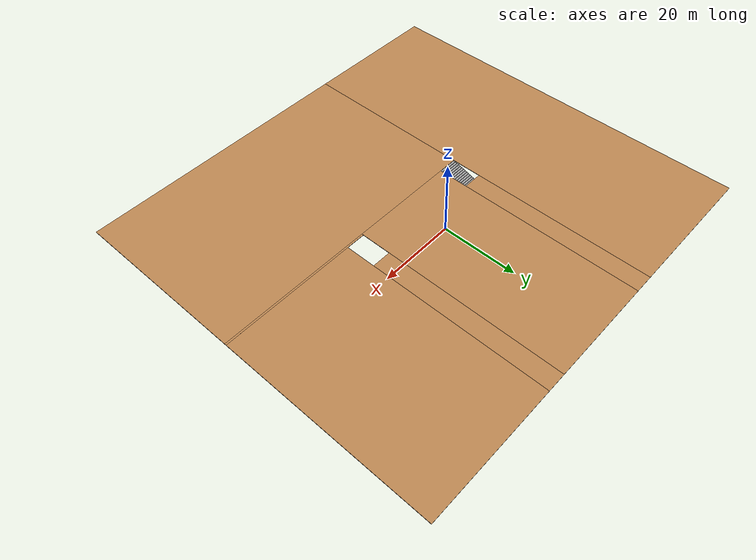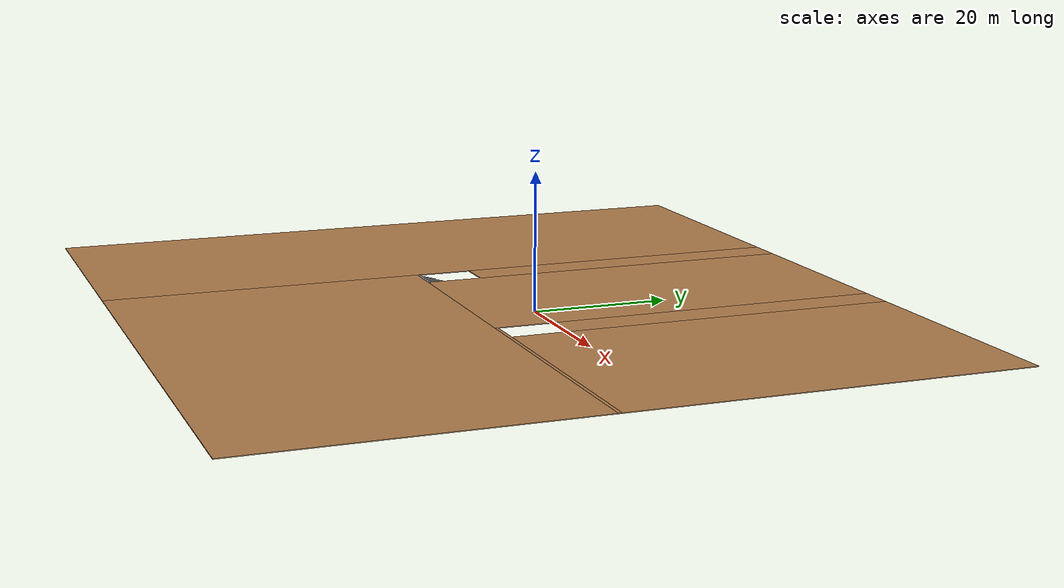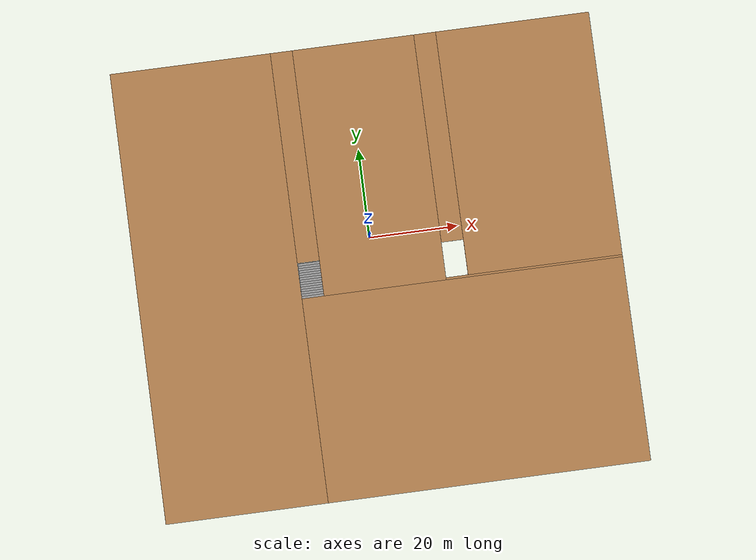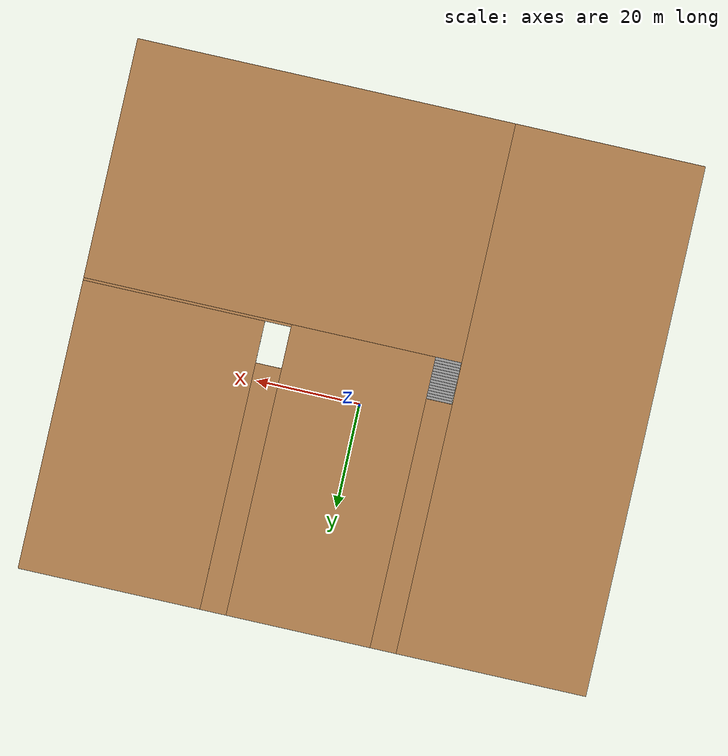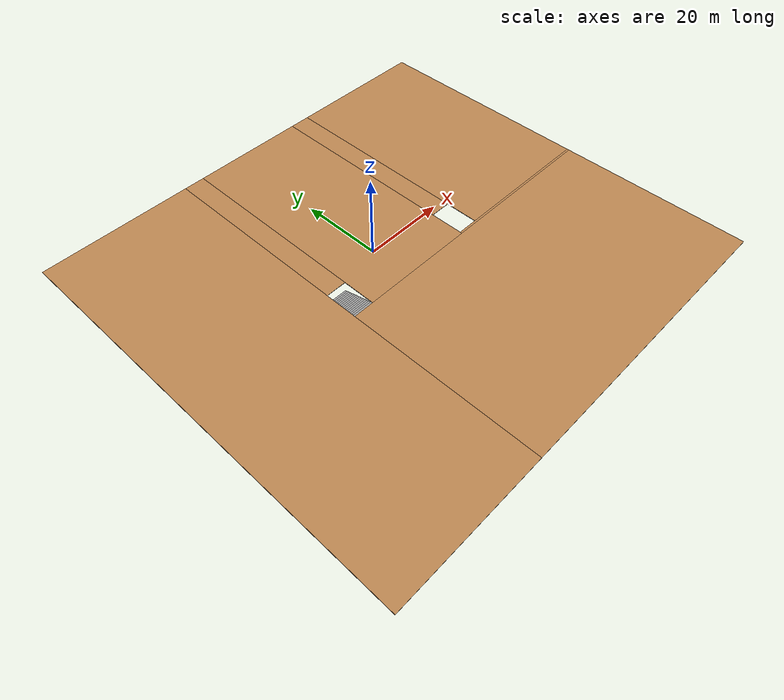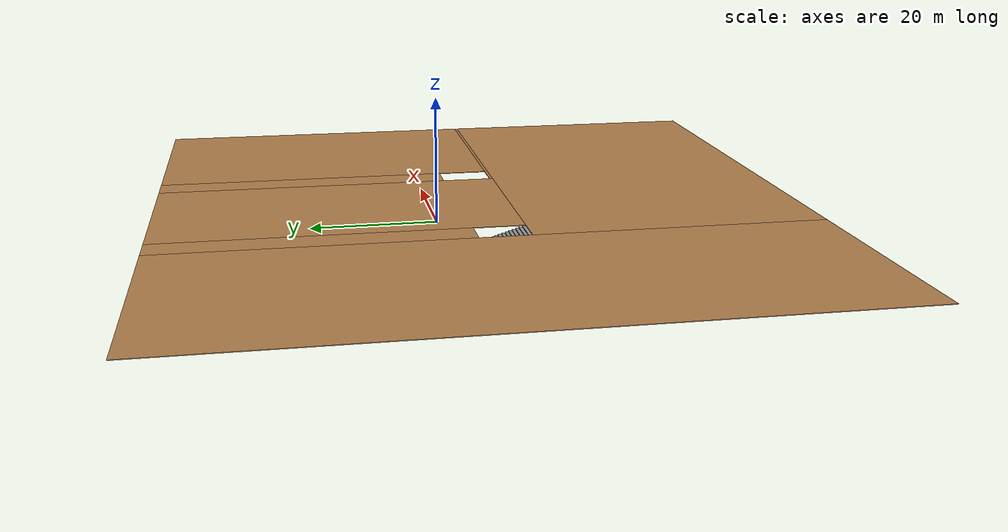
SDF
<sdf version="1.6">
 <model name="new_building">
  <pose>1.10912 -6.88825 0 0 -0 0</pose>
  <link name="Floor_0">
   <pose>0 1e-06 2.5 0 -0 0</pose>
   <visual name="Floor_0_Visual_0">
    <pose>-36.3115 0 0.05 0 -0 0</pose>
    <geometry><box><size>36.4817 101.781 0.1</size></box></geometry>
    <material>
     <script><uri>file://media/materials/scripts/gazebo.material</uri><name>Gazebo/Wood</name></script>
     <ambient>1 1 1 1</ambient>
    </material>
    <meta><layer>1</layer></meta>
   </visual>
   <collision name="Floor_0_Collision_0">
    <geometry><box><size>36.4817 101.781 0.1</size></box></geometry>
    <pose>-36.3115 0 0.05 0 -0 0</pose>
   </collision>
   <visual name="Floor_0_Visual_1">
    <pose>18.2409 -27.9329 0.05 0 -0 0</pose>
    <geometry><box><size>72.6231 45.9155 0.1</size></box></geometry>
    <material>
     <script><uri>file://media/materials/scripts/gazebo.material</uri><name>Gazebo/Wood</name></script>
     <ambient>1 1 1 1</ambient>
    </material>
    <meta><layer>1</layer></meta>
   </visual>
   <collision name="Floor_0_Collision_1">
    <geometry><box><size>72.6231 45.9155 0.1</size></box></geometry>
    <pose>18.2409 -27.9329 0.05 0 -0 0</pose>
   </collision>
   <visual name="Floor_0_Visual_2">
    <pose>0.764911 22.9577 0.05 0 -0 0</pose>
    <geometry><box><size>27.6712 55.8658 0.1</size></box></geometry>
    <material>
     <script><uri>file://media/materials/scripts/gazebo.material</uri><name>Gazebo/Wood</name></script>
     <ambient>1 1 1 1</ambient>
    </material>
    <meta><layer>1</layer></meta>
   </visual>
   <collision name="Floor_0_Collision_2">
    <geometry><box><size>27.6712 55.8658 0.1</size></box></geometry>
    <pose>0.764911 22.9577 0.05 0 -0 0</pose>
   </collision>
   <visual name="Floor_0_Visual_3">
    <pose>34.5765 -4.72762 0.05 0 -0 0</pose>
    <geometry><box><size>39.9519 0.495018 0.1</size></box></geometry>
    <material>
     <script><uri>file://media/materials/scripts/gazebo.material</uri><name>Gazebo/Wood</name></script>
     <ambient>1 1 1 1</ambient>
    </material>
    <meta><layer>1</layer></meta>
   </visual>
   <collision name="Floor_0_Collision_3">
    <geometry><box><size>39.9519 0.495018 0.1</size></box></geometry>
    <pose>34.5765 -4.72762 0.05 0 -0 0</pose>
   </collision>
   <visual name="Floor_0_Visual_4">
    <pose>37.0765 23.2053 0.05 0 -0 0</pose>
    <geometry><box><size>34.9519 55.3707 0.1</size></box></geometry>
    <material>
     <script><uri>file://media/materials/scripts/gazebo.material</uri><name>Gazebo/Wood</name></script>
     <ambient>1 1 1 1</ambient>
    </material>
    <meta><layer>1</layer></meta>
   </visual>
   <collision name="Floor_0_Collision_4">
    <geometry><box><size>34.9519 55.3707 0.1</size></box></geometry>
    <pose>37.0765 23.2053 0.05 0 -0 0</pose>
   </collision>
   <visual name="Floor_0_Visual_5">
    <pose>-15.5707 26.9577 0.05 0 -0 0</pose>
    <geometry><box><size>5 47.8658 0.1</size></box></geometry>
    <material>
     <script><uri>file://media/materials/scripts/gazebo.material</uri><name>Gazebo/Wood</name></script>
     <ambient>1 1 1 1</ambient>
    </material>
    <meta><layer>1</layer></meta>
   </visual>
   <collision name="Floor_0_Collision_5">
    <geometry><box><size>5 47.8658 0.1</size></box></geometry>
    <pose>-15.5707 26.9577 0.05 0 -0 0</pose>
   </collision>
   <visual name="Floor_0_Visual_6">
    <pose>17.1005 27.2053 0.05 0 -0 0</pose>
    <geometry><box><size>5 47.3707 0.1</size></box></geometry>
    <material>
     <script><uri>file://media/materials/scripts/gazebo.material</uri><name>Gazebo/Wood</name></script>
     <ambient>1 1 1 1</ambient>
    </material>
    <meta><layer>1</layer></meta>
   </visual>
   <collision name="Floor_0_Collision_6">
    <geometry><box><size>5 47.3707 0.1</size></box></geometry>
    <pose>17.1005 27.2053 0.05 0 -0 0</pose>
   </collision>
  </link>
  <link name="Stairs_1">
   <visual name="Stairs_1_Visual_0">
    <pose>-15.5707 2.7582 0.083333 0 -0 0</pose>
    <geometry><box><size>5 0.533333 0.166667</size></box></geometry>
    <material>
     <script><uri>file://media/materials/scripts/gazebo.material</uri><name>Gazebo/Grey</name></script>
     <ambient>1 1 1 1</ambient>
    </material>
    <meta><layer>0</layer></meta>
   </visual>
   <collision name="Stairs_1_Collision_0">
    <geometry><box><size>5 0.533333 0.166667</size></box></geometry>
    <pose>-15.5707 2.7582 0.083333 0 -0 0</pose>
   </collision>
   <visual name="Stairs_1_Visual_1">
    <pose>-15.5707 2.22487 0.25 0 -0 0</pose>
    <geometry><box><size>5 0.533333 0.166667</size></box></geometry>
    <material>
     <script><uri>file://media/materials/scripts/gazebo.material</uri><name>Gazebo/Grey</name></script>
     <ambient>1 1 1 1</ambient>
    </material>
    <meta><layer>0</layer></meta>
   </visual>
   <collision name="Stairs_1_Collision_1">
    <geometry><box><size>5 0.533333 0.166667</size></box></geometry>
    <pose>-15.5707 2.22487 0.25 0 -0 0</pose>
   </collision>
   <visual name="Stairs_1_Visual_2">
    <pose>-15.5707 1.69154 0.416667 0 -0 0</pose>
    <geometry><box><size>5 0.533333 0.166667</size></box></geometry>
    <material>
     <script><uri>file://media/materials/scripts/gazebo.material</uri><name>Gazebo/Grey</name></script>
     <ambient>1 1 1 1</ambient>
    </material>
    <meta><layer>0</layer></meta>
   </visual>
   <collision name="Stairs_1_Collision_2">
    <geometry><box><size>5 0.533333 0.166667</size></box></geometry>
    <pose>-15.5707 1.69154 0.416667 0 -0 0</pose>
   </collision>
   <visual name="Stairs_1_Visual_3">
    <pose>-15.5707 1.1582 0.583333 0 -0 0</pose>
    <geometry><box><size>5 0.533333 0.166667</size></box></geometry>
    <material>
     <script><uri>file://media/materials/scripts/gazebo.material</uri><name>Gazebo/Grey</name></script>
     <ambient>1 1 1 1</ambient>
    </material>
    <meta><layer>0</layer></meta>
   </visual>
   <collision name="Stairs_1_Collision_3">
    <geometry><box><size>5 0.533333 0.166667</size></box></geometry>
    <pose>-15.5707 1.1582 0.583333 0 -0 0</pose>
   </collision>
   <visual name="Stairs_1_Visual_4">
    <pose>-15.5707 0.624868 0.75 0 -0 0</pose>
    <geometry><box><size>5 0.533333 0.166667</size></box></geometry>
    <material>
     <script><uri>file://media/materials/scripts/gazebo.material</uri><name>Gazebo/Grey</name></script>
     <ambient>1 1 1 1</ambient>
    </material>
    <meta><layer>0</layer></meta>
   </visual>
   <collision name="Stairs_1_Collision_4">
    <geometry><box><size>5 0.533333 0.166667</size></box></geometry>
    <pose>-15.5707 0.624868 0.75 0 -0 0</pose>
   </collision>
   <visual name="Stairs_1_Visual_5">
    <pose>-15.5707 0.091535 0.916667 0 -0 0</pose>
    <geometry><box><size>5 0.533333 0.166667</size></box></geometry>
    <material>
     <script><uri>file://media/materials/scripts/gazebo.material</uri><name>Gazebo/Grey</name></script>
     <ambient>1 1 1 1</ambient>
    </material>
    <meta><layer>0</layer></meta>
   </visual>
   <collision name="Stairs_1_Collision_5">
    <geometry><box><size>5 0.533333 0.166667</size></box></geometry>
    <pose>-15.5707 0.091535 0.916667 0 -0 0</pose>
   </collision>
   <visual name="Stairs_1_Visual_6">
    <pose>-15.5707 -0.441798 1.08333 0 -0 0</pose>
    <geometry><box><size>5 0.533333 0.166667</size></box></geometry>
    <material>
     <script><uri>file://media/materials/scripts/gazebo.material</uri><name>Gazebo/Grey</name></script>
     <ambient>1 1 1 1</ambient>
    </material>
    <meta><layer>0</layer></meta>
   </visual>
   <collision name="Stairs_1_Collision_6">
    <geometry><box><size>5 0.533333 0.166667</size></box></geometry>
    <pose>-15.5707 -0.441798 1.08333 0 -0 0</pose>
   </collision>
   <visual name="Stairs_1_Visual_7">
    <pose>-15.5707 -0.975132 1.25 0 -0 0</pose>
    <geometry><box><size>5 0.533333 0.166667</size></box></geometry>
    <material>
     <script><uri>file://media/materials/scripts/gazebo.material</uri><name>Gazebo/Grey</name></script>
     <ambient>1 1 1 1</ambient>
    </material>
    <meta><layer>0</layer></meta>
   </visual>
   <collision name="Stairs_1_Collision_7">
    <geometry><box><size>5 0.533333 0.166667</size></box></geometry>
    <pose>-15.5707 -0.975132 1.25 0 -0 0</pose>
   </collision>
   <visual name="Stairs_1_Visual_8">
    <pose>-15.5707 -1.50846 1.41667 0 -0 0</pose>
    <geometry><box><size>5 0.533333 0.166667</size></box></geometry>
    <material>
     <script><uri>file://media/materials/scripts/gazebo.material</uri><name>Gazebo/Grey</name></script>
     <ambient>1 1 1 1</ambient>
    </material>
    <meta><layer>0</layer></meta>
   </visual>
   <collision name="Stairs_1_Collision_8">
    <geometry><box><size>5 0.533333 0.166667</size></box></geometry>
    <pose>-15.5707 -1.50846 1.41667 0 -0 0</pose>
   </collision>
   <visual name="Stairs_1_Visual_9">
    <pose>-15.5707 -2.0418 1.58333 0 -0 0</pose>
    <geometry><box><size>5 0.533333 0.166667</size></box></geometry>
    <material>
     <script><uri>file://media/materials/scripts/gazebo.material</uri><name>Gazebo/Grey</name></script>
     <ambient>1 1 1 1</ambient>
    </material>
    <meta><layer>0</layer></meta>
   </visual>
   <collision name="Stairs_1_Collision_9">
    <geometry><box><size>5 0.533333 0.166667</size></box></geometry>
    <pose>-15.5707 -2.0418 1.58333 0 -0 0</pose>
   </collision>
   <visual name="Stairs_1_Visual_10">
    <pose>-15.5707 -2.57513 1.75 0 -0 0</pose>
    <geometry><box><size>5 0.533333 0.166667</size></box></geometry>
    <material>
     <script><uri>file://media/materials/scripts/gazebo.material</uri><name>Gazebo/Grey</name></script>
     <ambient>1 1 1 1</ambient>
    </material>
    <meta><layer>0</layer></meta>
   </visual>
   <collision name="Stairs_1_Collision_10">
    <geometry><box><size>5 0.533333 0.166667</size></box></geometry>
    <pose>-15.5707 -2.57513 1.75 0 -0 0</pose>
   </collision>
   <visual name="Stairs_1_Visual_11">
    <pose>-15.5707 -3.10846 1.91667 0 -0 0</pose>
    <geometry><box><size>5 0.533333 0.166667</size></box></geometry>
    <material>
     <script><uri>file://media/materials/scripts/gazebo.material</uri><name>Gazebo/Grey</name></script>
     <ambient>1 1 1 1</ambient>
    </material>
    <meta><layer>0</layer></meta>
   </visual>
   <collision name="Stairs_1_Collision_11">
    <geometry><box><size>5 0.533333 0.166667</size></box></geometry>
    <pose>-15.5707 -3.10846 1.91667 0 -0 0</pose>
   </collision>
   <visual name="Stairs_1_Visual_12">
    <pose>-15.5707 -3.6418 2.08333 0 -0 0</pose>
    <geometry><box><size>5 0.533333 0.166667</size></box></geometry>
    <material>
     <script><uri>file://media/materials/scripts/gazebo.material</uri><name>Gazebo/Grey</name></script>
     <ambient>1 1 1 1</ambient>
    </material>
    <meta><layer>0</layer></meta>
   </visual>
   <collision name="Stairs_1_Collision_12">
    <geometry><box><size>5 0.533333 0.166667</size></box></geometry>
    <pose>-15.5707 -3.6418 2.08333 0 -0 0</pose>
   </collision>
   <visual name="Stairs_1_Visual_13">
    <pose>-15.5707 -4.17513 2.25 0 -0 0</pose>
    <geometry><box><size>5 0.533333 0.166667</size></box></geometry>
    <material>
     <script><uri>file://media/materials/scripts/gazebo.material</uri><name>Gazebo/Grey</name></script>
     <ambient>1 1 1 1</ambient>
    </material>
    <meta><layer>0</layer></meta>
   </visual>
   <collision name="Stairs_1_Collision_13">
    <geometry><box><size>5 0.533333 0.166667</size></box></geometry>
    <pose>-15.5707 -4.17513 2.25 0 -0 0</pose>
   </collision>
   <visual name="Stairs_1_Visual_14">
    <pose>-15.5707 -4.70847 2.41667 0 -0 0</pose>
    <geometry><box><size>5 0.533333 0.166667</size></box></geometry>
    <material>
     <script><uri>file://media/materials/scripts/gazebo.material</uri><name>Gazebo/Grey</name></script>
     <ambient>1 1 1 1</ambient>
    </material>
    <meta><layer>0</layer></meta>
   </visual>
   <collision name="Stairs_1_Collision_14">
    <geometry><box><size>5 0.533333 0.166667</size></box></geometry>
    <pose>-15.5707 -4.70847 2.41667 0 -0 0</pose>
   </collision>
  </link>
  <static>1</static>
 </model>
</sdf>
